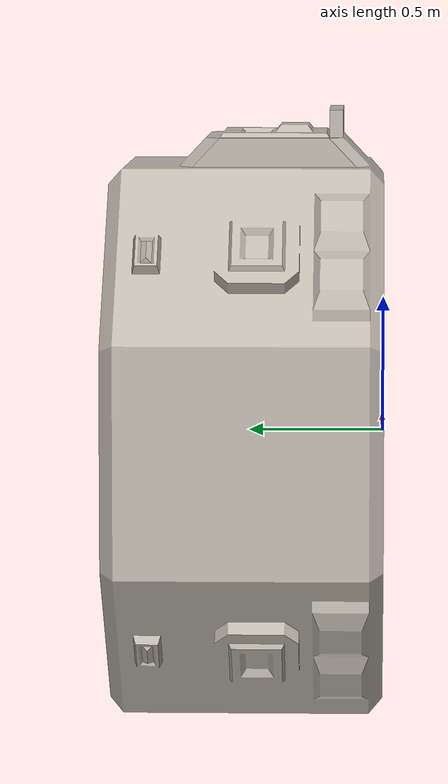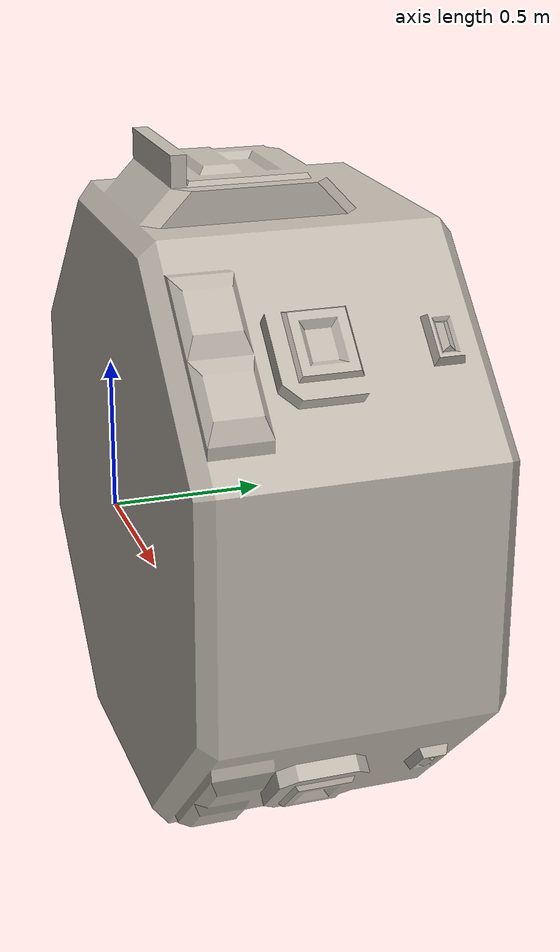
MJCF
<?xml version='1.0' encoding='utf-8'?>
<mujoco model="basemodule_C">
  <asset>
    <texture name="tex_spacebits_texture" type="2d" file="spacebits_texture.png" />
    <material name="mat_spacebits_texture" texture="tex_spacebits_texture" rgba="1 1 1 1" />
    <mesh name="basemodule_C_spacebits_texture" file="basemodule_C_spacebits_texture.obj" />
  </asset>
  <worldbody>
    <body name="basemodule_C">
      <freejoint />
      <geom type="mesh" mesh="basemodule_C_spacebits_texture" pos="0 0 0" material="mat_spacebits_texture" />
    </body>
  </worldbody>
</mujoco>
